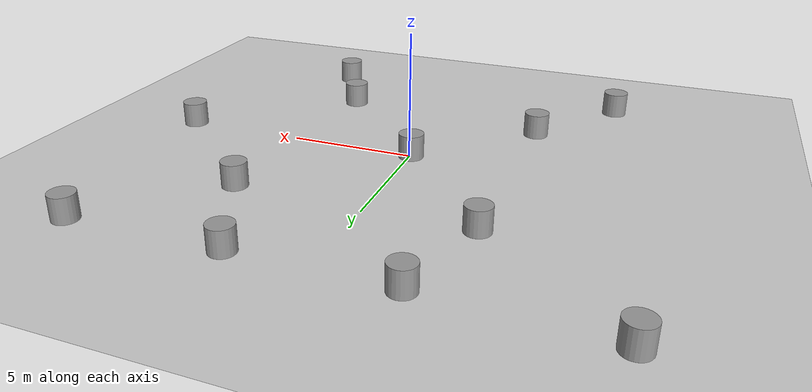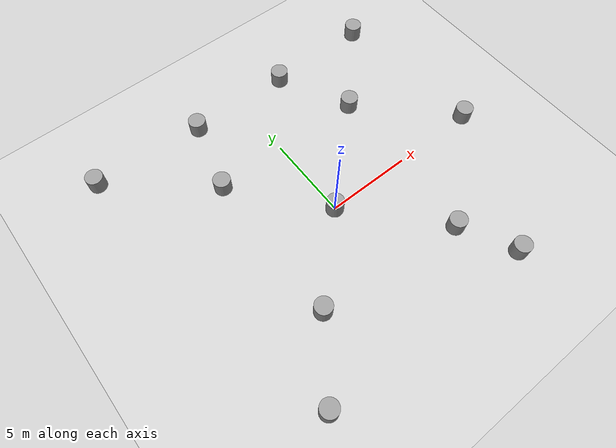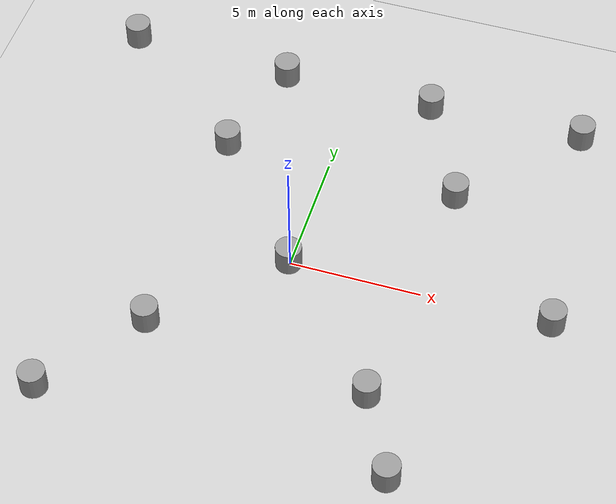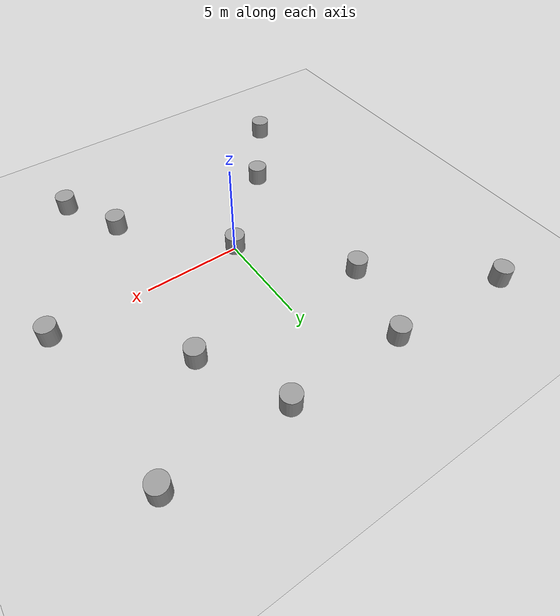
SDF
<sdf version="1.7">
 <world name="default">
  <light name="sun" type="directional">
   <pose>0 0 10 0 -0 0</pose>
   <diffuse>0.8 0.8 0.8 1</diffuse>
   <specular>0.2 0.2 0.2 1</specular>
   <attenuation>
    <range>1000</range>
    <constant>0.9</constant>
    <linear>0.01</linear>
    <quadratic>0.001</quadratic>
   </attenuation>
   <direction>-0.5 0.1 -0.9</direction>
   <spot><inner_angle>0</inner_angle><outer_angle>0</outer_angle><falloff>0</falloff></spot>
  </light>
  <model name="ground_plane">
   <static>1</static>
   <link name="link">
    <collision name="collision">
     <geometry><plane><normal>0 0 1</normal><size>100 100</size></plane></geometry>
     <surface><friction><ode><mu>100</mu><mu2>50</mu2></ode></friction></surface>
    </collision>
    <visual name="visual">
     <cast_shadows>0</cast_shadows>
     <geometry><plane><normal>0 0 1</normal><size>100 100</size></plane></geometry>
     <material>
      <script><uri>file://media/materials/scripts/gazebo.material</uri><name>Gazebo/Grey</name></script>
     </material>
    </visual>
   </link>
  </model>
  <gravity>0 0 -9.8</gravity>
  <magnetic_field>6e-06 2.3e-05 -4.2e-05</magnetic_field>
  <atmosphere type="adiabatic"/>
  <physics type="ode">
   <max_step_size>0.01</max_step_size>
   <real_time_factor>1</real_time_factor>
   <real_time_update_rate>100</real_time_update_rate>
  </physics>
  <scene><ambient>0.4 0.4 0.4 1</ambient><background>0.7 0.7 0.7 1</background><shadows>1</shadows></scene>
  <spherical_coordinates>
   <surface_model>EARTH_WGS84</surface_model>
   <latitude_deg>0</latitude_deg>
   <longitude_deg>0</longitude_deg>
   <elevation>0</elevation>
   <heading_deg>0</heading_deg>
  </spherical_coordinates>
  <model name="unit_cylinder">
   <pose>4.34949 -4.88264 0.499096 4.1e-05 5.5e-05 -0.135818</pose>
   <link name="link">
    <inertial>
     <mass>1</mass>
     <inertia><ixx>0.145833</ixx><ixy>0</ixy><ixz>0</ixz><iyy>0.145833</iyy><iyz>0</iyz><izz>0.125</izz></inertia>
    </inertial>
    <collision name="collision">
     <geometry><cylinder><radius>0.5</radius><length>1</length></cylinder></geometry>
    </collision>
    <visual name="visual">
     <geometry><cylinder><radius>0.5</radius><length>1</length></cylinder></geometry>
     <material>
      <script><name>Gazebo/Grey</name><uri>file://media/materials/scripts/gazebo.material</uri></script>
     </material>
    </visual>
   </link>
  </model>
  <model name="unit_cylinder_0">
   <pose>5.06568 4.81135 0.499824 -0.000252 -0.000247 0.010197</pose>
   <link name="link">
    <inertial>
     <mass>1</mass>
     <inertia><ixx>0.145833</ixx><ixy>0</ixy><ixz>0</ixz><iyy>0.145833</iyy><iyz>0</iyz><izz>0.125</izz></inertia>
    </inertial>
    <collision name="collision">
     <geometry><cylinder><radius>0.5</radius><length>1</length></cylinder></geometry>
    </collision>
    <visual name="visual">
     <geometry><cylinder><radius>0.5</radius><length>1</length></cylinder></geometry>
     <material>
      <script><name>Gazebo/Grey</name><uri>file://media/materials/scripts/gazebo.material</uri></script>
     </material>
    </visual>
   </link>
  </model>
  <model name="unit_cylinder_2">
   <pose>9.89364 0.025953 0.499096 4.8e-05 4.8e-05 -5e-05</pose>
   <link name="link">
    <inertial>
     <mass>1</mass>
     <inertia><ixx>0.145833</ixx><ixy>0</ixy><ixz>0</ixz><iyy>0.145833</iyy><iyz>0</iyz><izz>0.125</izz></inertia>
    </inertial>
    <collision name="collision">
     <geometry><cylinder><radius>0.5</radius><length>1</length></cylinder></geometry>
    </collision>
    <visual name="visual">
     <geometry><cylinder><radius>0.5</radius><length>1</length></cylinder></geometry>
     <material>
      <script><name>Gazebo/Grey</name><uri>file://media/materials/scripts/gazebo.material</uri></script>
     </material>
    </visual>
   </link>
  </model>
  <model name="unit_cylinder_1">
   <pose>2.99968 9.00033 0.499096 5e-05 4.7e-05 0.030043</pose>
   <link name="link">
    <inertial>
     <mass>1</mass>
     <inertia><ixx>0.145833</ixx><ixy>0</ixy><ixz>0</ixz><iyy>0.145833</iyy><iyz>0</iyz><izz>0.125</izz></inertia>
    </inertial>
    <collision name="collision">
     <geometry><cylinder><radius>0.5</radius><length>1</length></cylinder></geometry>
    </collision>
    <visual name="visual">
     <geometry><cylinder><radius>0.5</radius><length>1</length></cylinder></geometry>
     <material>
      <script><name>Gazebo/Grey</name><uri>file://media/materials/scripts/gazebo.material</uri></script>
     </material>
    </visual>
   </link>
  </model>
  <model name="unit_cylinder_3">
   <pose>9.06144 9.12671 0.499789 0.000422 0.000422 -3.9e-05</pose>
   <link name="link">
    <inertial>
     <mass>1</mass>
     <inertia><ixx>0.145833</ixx><ixy>0</ixy><ixz>0</ixz><iyy>0.145833</iyy><iyz>0</iyz><izz>0.125</izz></inertia>
    </inertial>
    <collision name="collision">
     <geometry><cylinder><radius>0.5</radius><length>1</length></cylinder></geometry>
    </collision>
    <visual name="visual">
     <geometry><cylinder><radius>0.5</radius><length>1</length></cylinder></geometry>
     <material>
      <script><name>Gazebo/Grey</name><uri>file://media/materials/scripts/gazebo.material</uri></script>
     </material>
    </visual>
   </link>
  </model>
  <model name="unit_cylinder_4">
   <pose>5.93283 -7.93935 0.49912 0 0 -3.8e-05</pose>
   <link name="link">
    <inertial>
     <mass>1</mass>
     <inertia><ixx>0.145833</ixx><ixy>0</ixy><ixz>0</ixz><iyy>0.145833</iyy><iyz>0</iyz><izz>0.125</izz></inertia>
    </inertial>
    <collision name="collision">
     <geometry><cylinder><radius>0.5</radius><length>1</length></cylinder></geometry>
    </collision>
    <visual name="visual">
     <geometry><cylinder><radius>0.5</radius><length>1</length></cylinder></geometry>
     <material>
      <script><name>Gazebo/Grey</name><uri>file://media/materials/scripts/gazebo.material</uri></script>
     </material>
    </visual>
   </link>
  </model>
  <model name="unit_cylinder_5">
   <pose>-6.97938 -7.90937 0.49912 0 0 -3e-05</pose>
   <link name="link">
    <inertial>
     <mass>1</mass>
     <inertia><ixx>0.145833</ixx><ixy>0</ixy><ixz>0</ixz><iyy>0.145833</iyy><iyz>0</iyz><izz>0.125</izz></inertia>
    </inertial>
    <collision name="collision">
     <geometry><cylinder><radius>0.5</radius><length>1</length></cylinder></geometry>
    </collision>
    <visual name="visual">
     <geometry><cylinder><radius>0.5</radius><length>1</length></cylinder></geometry>
     <material>
      <script><name>Gazebo/Grey</name><uri>file://media/materials/scripts/gazebo.material</uri></script>
     </material>
    </visual>
   </link>
  </model>
  <model name="unit_cylinder_6">
   <pose>-9.51363 9.30482 0.499096 4.8e-05 4.8e-05 -2.8e-05</pose>
   <link name="link">
    <inertial>
     <mass>1</mass>
     <inertia><ixx>0.145833</ixx><ixy>0</ixy><ixz>0</ixz><iyy>0.145833</iyy><iyz>0</iyz><izz>0.125</izz></inertia>
    </inertial>
    <collision name="collision">
     <geometry><cylinder><radius>0.5</radius><length>1</length></cylinder></geometry>
    </collision>
    <visual name="visual">
     <geometry><cylinder><radius>0.5</radius><length>1</length></cylinder></geometry>
     <material>
      <script><name>Gazebo/Grey</name><uri>file://media/materials/scripts/gazebo.material</uri></script>
     </material>
    </visual>
   </link>
  </model>
  <model name="unit_cylinder_7">
   <pose>-4.20166 -4.09739 0.499824 -0.000249 -0.000249 -2.9e-05</pose>
   <link name="link">
    <inertial>
     <mass>1</mass>
     <inertia><ixx>0.145833</ixx><ixy>0</ixy><ixz>0</ixz><iyy>0.145833</iyy><iyz>0</iyz><izz>0.125</izz></inertia>
    </inertial>
    <collision name="collision">
     <geometry><cylinder><radius>0.5</radius><length>1</length></cylinder></geometry>
    </collision>
    <visual name="visual">
     <geometry><cylinder><radius>0.5</radius><length>1</length></cylinder></geometry>
     <material>
      <script><name>Gazebo/Grey</name><uri>file://media/materials/scripts/gazebo.material</uri></script>
     </material>
    </visual>
   </link>
  </model>
  <model name="unit_cylinder_8">
   <pose>-3.00007 9.00007 0.49912 0 0 -2.7e-05</pose>
   <link name="link">
    <inertial>
     <mass>1</mass>
     <inertia><ixx>0.145833</ixx><ixy>0</ixy><ixz>0</ixz><iyy>0.145833</iyy><iyz>0</iyz><izz>0.125</izz></inertia>
    </inertial>
    <collision name="collision">
     <geometry><cylinder><radius>0.5</radius><length>1</length></cylinder></geometry>
    </collision>
    <visual name="visual">
     <geometry><cylinder><radius>0.5</radius><length>1</length></cylinder></geometry>
     <material>
      <script><name>Gazebo/Grey</name><uri>file://media/materials/scripts/gazebo.material</uri></script>
     </material>
    </visual>
   </link>
  </model>
  <model name="unit_cylinder_9">
   <pose>-4.10573 4.83475 0.499789 0.000422 0.000422 -2.5e-05</pose>
   <link name="link">
    <inertial>
     <mass>1</mass>
     <inertia><ixx>0.145833</ixx><ixy>0</ixy><ixz>0</ixz><iyy>0.145833</iyy><iyz>0</iyz><izz>0.125</izz></inertia>
    </inertial>
    <collision name="collision">
     <geometry><cylinder><radius>0.5</radius><length>1</length></cylinder></geometry>
    </collision>
    <visual name="visual">
     <geometry><cylinder><radius>0.5</radius><length>1</length></cylinder></geometry>
     <material>
      <script><name>Gazebo/Grey</name><uri>file://media/materials/scripts/gazebo.material</uri></script>
     </material>
    </visual>
   </link>
  </model>
  <model name="unit_cylinder_10">
   <pose>-0.059009 -0.034612 0.49912 0 0 -2.4e-05</pose>
   <link name="link">
    <inertial>
     <mass>1</mass>
     <inertia><ixx>0.145833</ixx><ixy>0</ixy><ixz>0</ixz><iyy>0.145833</iyy><iyz>0</iyz><izz>0.125</izz></inertia>
    </inertial>
    <collision name="collision">
     <geometry><cylinder><radius>0.5</radius><length>1</length></cylinder></geometry>
    </collision>
    <visual name="visual">
     <geometry><cylinder><radius>0.5</radius><length>1</length></cylinder></geometry>
     <material>
      <script><name>Gazebo/Grey</name><uri>file://media/materials/scripts/gazebo.material</uri></script>
     </material>
    </visual>
   </link>
  </model>
 </world>
</sdf>
